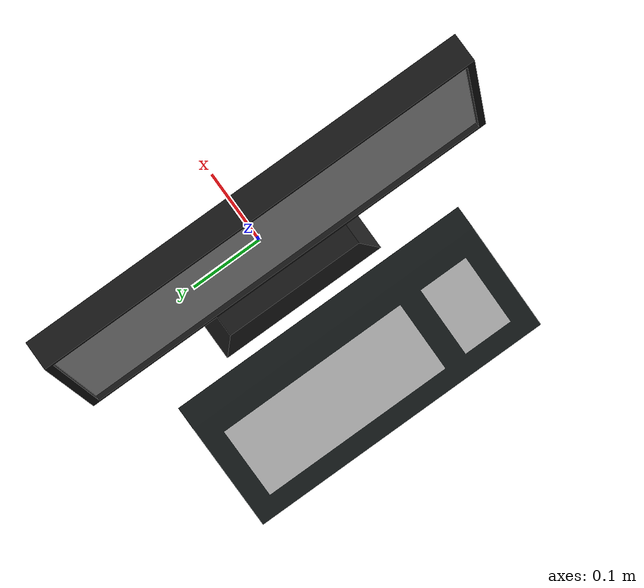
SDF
<?xml version="1.0"?>

<sdf version="1.6">
  <model name='monitor_keyboard'>
    <static>true</static>
    <link name="body">

        <visual name="visual">
          <geometry>
            <mesh><uri>model://models/monitor_keyboard/meshes/monitor_keyboard.dae</uri></mesh>
          </geometry>
        </visual>

        <collision name="collision">
          <geometry>
            <mesh><uri>model://models/monitor_keyboard/meshes/monitor_keyboard.dae</uri></mesh>
          </geometry>
        </collision>

    </link>
  </model>
</sdf>
